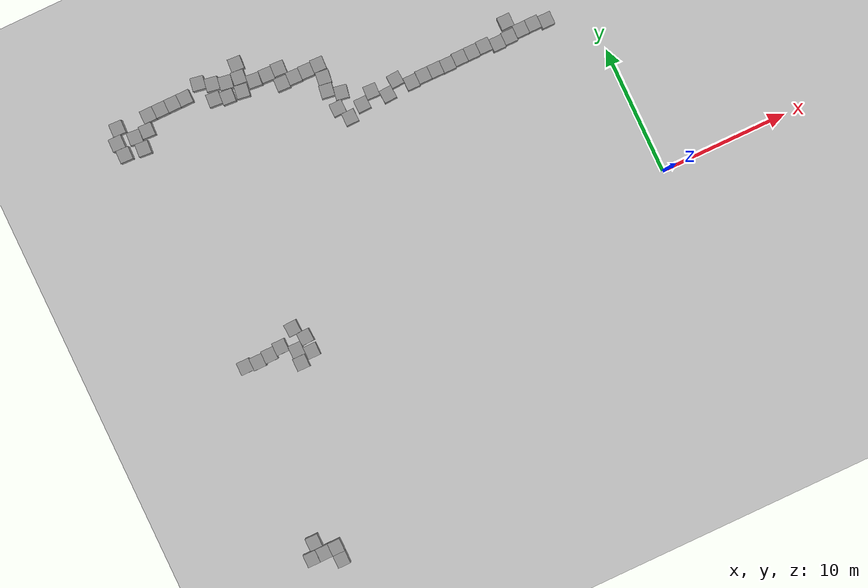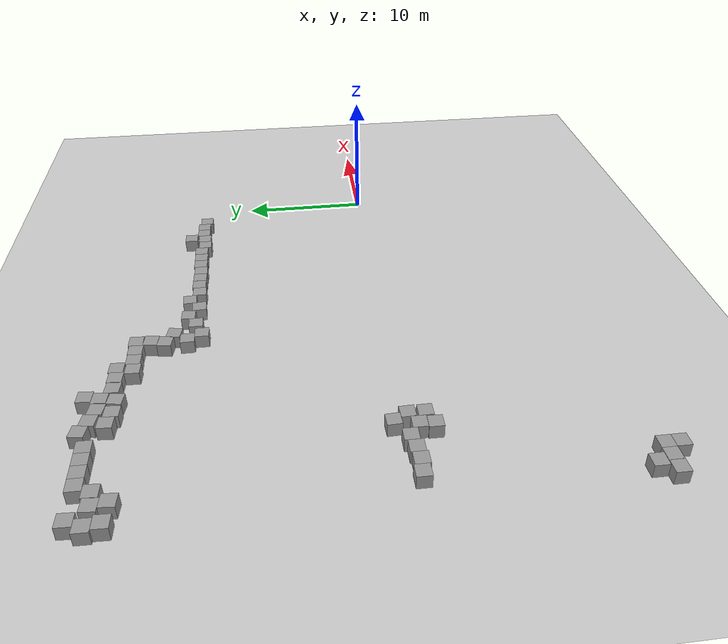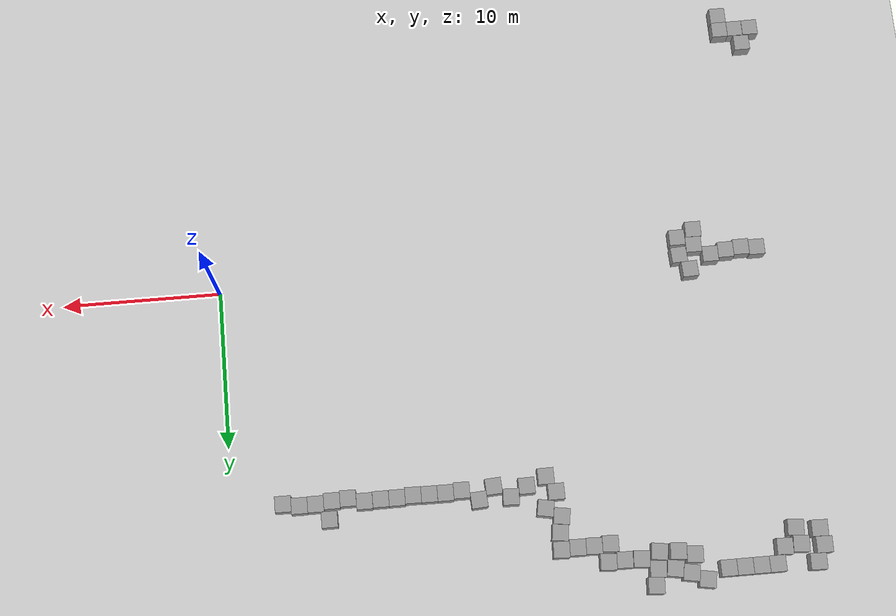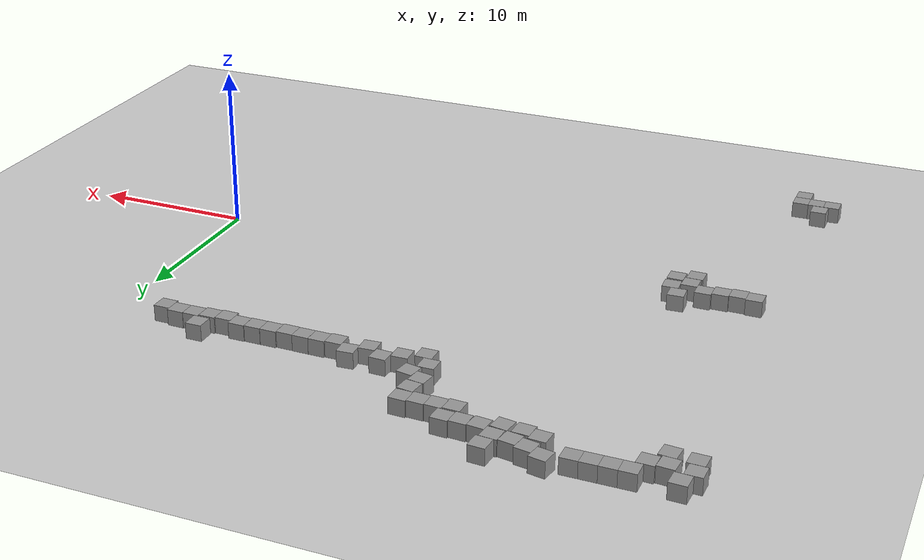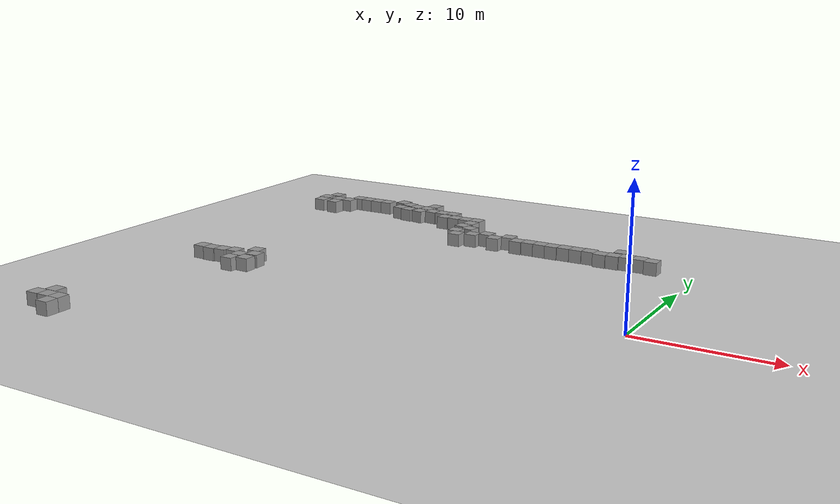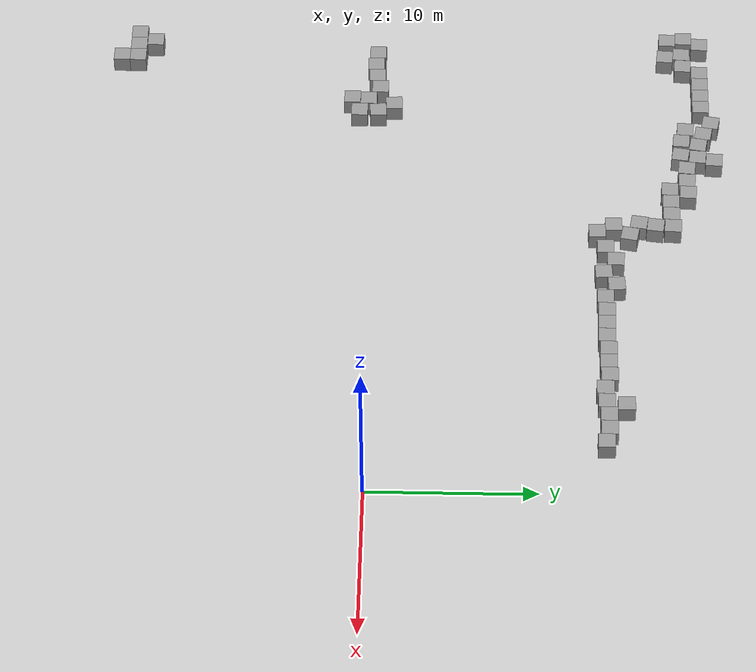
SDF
<sdf version="1.7">
 <world name="default">
  <model name="ground_plane">
   <static>1</static>
   <link name="link">
    <collision name="collision">
     <geometry><plane><normal>0 0 1</normal><size>100 100</size></plane></geometry>
     <surface>
      <contact><collide_bitmask>65535</collide_bitmask></contact>
      <friction><ode><mu>100</mu><mu2>50</mu2></ode></friction>
     </surface>
    </collision>
    <visual name="visual">
     <cast_shadows>0</cast_shadows>
     <geometry><plane><normal>0 0 1</normal><size>100 100</size></plane></geometry>
     <material>
      <script><uri>file://media/materials/scripts/gazebo.material</uri><name>Gazebo/Grey</name></script>
     </material>
    </visual>
   </link>
  </model>
  <model name="unit_box_clone_11">
   <pose>-3.20904 13.8326 0.499995 0 -1e-05 -0.006582</pose>
   <link name="link">
    <inertial>
     <mass>1</mass>
     <inertia>
      <ixx>0.166667</ixx>
      <ixy>0</ixy>
      <ixz>0</ixz>
      <iyy>0.166667</iyy>
      <iyz>0</iyz>
      <izz>0.166667</izz>
     </inertia>
    </inertial>
    <collision name="collision"><geometry><box><size>1 1 1</size></box></geometry></collision>
    <visual name="visual">
     <geometry><box><size>1 1 1</size></box></geometry>
     <material>
      <script><name>Gazebo/Grey</name><uri>file://media/materials/scripts/gazebo.material</uri></script>
     </material>
    </visual>
   </link>
  </model>
  <model name="unit_box_clone_12">
   <pose>-4.20812 14.0134 0.499995 0 -1e-05 -0.007246</pose>
   <link name="link">
    <inertial>
     <mass>1</mass>
     <inertia>
      <ixx>0.166667</ixx>
      <ixy>0</ixy>
      <ixz>0</ixz>
      <iyy>0.166667</iyy>
      <iyz>0</iyz>
      <izz>0.166667</izz>
     </inertia>
    </inertial>
    <collision name="collision"><geometry><box><size>1 1 1</size></box></geometry></collision>
    <visual name="visual">
     <geometry><box><size>1 1 1</size></box></geometry>
     <material>
      <script><name>Gazebo/Grey</name><uri>file://media/materials/scripts/gazebo.material</uri></script>
     </material>
    </visual>
   </link>
  </model>
  <model name="unit_box_clone_13">
   <pose>-5.20876 14.0027 0.5 -0 -0 -0.007598</pose>
   <link name="link">
    <inertial>
     <mass>1</mass>
     <inertia>
      <ixx>0.166667</ixx>
      <ixy>0</ixy>
      <ixz>0</ixz>
      <iyy>0.166667</iyy>
      <iyz>0</iyz>
      <izz>0.166667</izz>
     </inertia>
    </inertial>
    <collision name="collision"><geometry><box><size>1 1 1</size></box></geometry></collision>
    <visual name="visual">
     <geometry><box><size>1 1 1</size></box></geometry>
     <material>
      <script><name>Gazebo/Grey</name><uri>file://media/materials/scripts/gazebo.material</uri></script>
     </material>
    </visual>
   </link>
  </model>
  <model name="unit_box_clone_14">
   <pose>-6.21043 13.8841 0.499995 -1e-05 -0 -0.007559</pose>
   <link name="link">
    <inertial>
     <mass>1</mass>
     <inertia>
      <ixx>0.166667</ixx>
      <ixy>0</ixy>
      <ixz>0</ixz>
      <iyy>0.166667</iyy>
      <iyz>0</iyz>
      <izz>0.166667</izz>
     </inertia>
    </inertial>
    <collision name="collision"><geometry><box><size>1 1 1</size></box></geometry></collision>
    <visual name="visual">
     <geometry><box><size>1 1 1</size></box></geometry>
     <material>
      <script><name>Gazebo/Grey</name><uri>file://media/materials/scripts/gazebo.material</uri></script>
     </material>
    </visual>
   </link>
  </model>
  <model name="unit_box_clone_15">
   <pose>-6.0009 15.0113 0.5 -0 -0 -0.002611</pose>
   <link name="link">
    <inertial>
     <mass>1</mass>
     <inertia>
      <ixx>0.166667</ixx>
      <ixy>0</ixy>
      <ixz>0</ixz>
      <iyy>0.166667</iyy>
      <iyz>0</iyz>
      <izz>0.166667</izz>
     </inertia>
    </inertial>
    <collision name="collision"><geometry><box><size>1 1 1</size></box></geometry></collision>
    <visual name="visual">
     <geometry><box><size>1 1 1</size></box></geometry>
     <material>
      <script><name>Gazebo/Grey</name><uri>file://media/materials/scripts/gazebo.material</uri></script>
     </material>
    </visual>
   </link>
  </model>
  <model name="unit_box_clone_16">
   <pose>-8.21249 14.0705 0.5 0 -0 -0.008651</pose>
   <link name="link">
    <inertial>
     <mass>1</mass>
     <inertia>
      <ixx>0.166667</ixx>
      <ixy>0</ixy>
      <ixz>0</ixz>
      <iyy>0.166667</iyy>
      <iyz>0</iyz>
      <izz>0.166667</izz>
     </inertia>
    </inertial>
    <collision name="collision"><geometry><box><size>1 1 1</size></box></geometry></collision>
    <visual name="visual">
     <geometry><box><size>1 1 1</size></box></geometry>
     <material>
      <script><name>Gazebo/Grey</name><uri>file://media/materials/scripts/gazebo.material</uri></script>
     </material>
    </visual>
   </link>
  </model>
  <model name="unit_box_clone_17">
   <pose>-7.21146 13.8128 0.499995 0 -1e-05 -0.00754</pose>
   <link name="link">
    <inertial>
     <mass>1</mass>
     <inertia>
      <ixx>0.166667</ixx>
      <ixy>0</ixy>
      <ixz>0</ixz>
      <iyy>0.166667</iyy>
      <iyz>0</iyz>
      <izz>0.166667</izz>
     </inertia>
    </inertial>
    <collision name="collision"><geometry><box><size>1 1 1</size></box></geometry></collision>
    <visual name="visual">
     <geometry><box><size>1 1 1</size></box></geometry>
     <material>
      <script><name>Gazebo/Grey</name><uri>file://media/materials/scripts/gazebo.material</uri></script>
     </material>
    </visual>
   </link>
  </model>
  <model name="unit_box_clone_18">
   <pose>-9.21544 14.0347 0.499995 0 -1e-05 -0.008374</pose>
   <link name="link">
    <inertial>
     <mass>1</mass>
     <inertia>
      <ixx>0.166667</ixx>
      <ixy>0</ixy>
      <ixz>0</ixz>
      <iyy>0.166667</iyy>
      <iyz>0</iyz>
      <izz>0.166667</izz>
     </inertia>
    </inertial>
    <collision name="collision"><geometry><box><size>1 1 1</size></box></geometry></collision>
    <visual name="visual">
     <geometry><box><size>1 1 1</size></box></geometry>
     <material>
      <script><name>Gazebo/Grey</name><uri>file://media/materials/scripts/gazebo.material</uri></script>
     </material>
    </visual>
   </link>
  </model>
  <model name="unit_box_clone_19">
   <pose>-10.2155 14.0343 0.499995 0 9e-06 -0.008419</pose>
   <link name="link">
    <inertial>
     <mass>1</mass>
     <inertia>
      <ixx>0.166667</ixx>
      <ixy>0</ixy>
      <ixz>0</ixz>
      <iyy>0.166667</iyy>
      <iyz>0</iyz>
      <izz>0.166667</izz>
     </inertia>
    </inertial>
    <collision name="collision"><geometry><box><size>1 1 1</size></box></geometry></collision>
    <visual name="visual">
     <geometry><box><size>1 1 1</size></box></geometry>
     <material>
      <script><name>Gazebo/Grey</name><uri>file://media/materials/scripts/gazebo.material</uri></script>
     </material>
    </visual>
   </link>
  </model>
  <model name="unit_box_clone_20">
   <pose>-11.2168 13.9621 0.499995 0 -1e-05 -0.009646</pose>
   <link name="link">
    <inertial>
     <mass>1</mass>
     <inertia>
      <ixx>0.166667</ixx>
      <ixy>0</ixy>
      <ixz>0</ixz>
      <iyy>0.166667</iyy>
      <iyz>0</iyz>
      <izz>0.166667</izz>
     </inertia>
    </inertial>
    <collision name="collision"><geometry><box><size>1 1 1</size></box></geometry></collision>
    <visual name="visual">
     <geometry><box><size>1 1 1</size></box></geometry>
     <material>
      <script><name>Gazebo/Grey</name><uri>file://media/materials/scripts/gazebo.material</uri></script>
     </material>
    </visual>
   </link>
  </model>
  <model name="unit_box_clone_21">
   <pose>-13.2188 13.9931 0.499995 1e-05 -0 -0.010031</pose>
   <link name="link">
    <inertial>
     <mass>1</mass>
     <inertia>
      <ixx>0.166667</ixx>
      <ixy>0</ixy>
      <ixz>0</ixz>
      <iyy>0.166667</iyy>
      <iyz>0</iyz>
      <izz>0.166667</izz>
     </inertia>
    </inertial>
    <collision name="collision"><geometry><box><size>1 1 1</size></box></geometry></collision>
    <visual name="visual">
     <geometry><box><size>1 1 1</size></box></geometry>
     <material>
      <script><name>Gazebo/Grey</name><uri>file://media/materials/scripts/gazebo.material</uri></script>
     </material>
    </visual>
   </link>
  </model>
  <model name="unit_box_clone_22">
   <pose>-12.2173 13.985 0.5 0 0 -0.009679</pose>
   <link name="link">
    <inertial>
     <mass>1</mass>
     <inertia>
      <ixx>0.166667</ixx>
      <ixy>0</ixy>
      <ixz>0</ixz>
      <iyy>0.166667</iyy>
      <iyz>0</iyz>
      <izz>0.166667</izz>
     </inertia>
    </inertial>
    <collision name="collision"><geometry><box><size>1 1 1</size></box></geometry></collision>
    <visual name="visual">
     <geometry><box><size>1 1 1</size></box></geometry>
     <material>
      <script><name>Gazebo/Grey</name><uri>file://media/materials/scripts/gazebo.material</uri></script>
     </material>
    </visual>
   </link>
  </model>
  <model name="unit_box_clone_23">
   <pose>-14.2197 13.9179 0.5 0 -0 -0.010055</pose>
   <link name="link">
    <inertial>
     <mass>1</mass>
     <inertia>
      <ixx>0.166667</ixx>
      <ixy>0</ixy>
      <ixz>0</ixz>
      <iyy>0.166667</iyy>
      <iyz>0</iyz>
      <izz>0.166667</izz>
     </inertia>
    </inertial>
    <collision name="collision"><geometry><box><size>1 1 1</size></box></geometry></collision>
    <visual name="visual">
     <geometry><box><size>1 1 1</size></box></geometry>
     <material>
      <script><name>Gazebo/Grey</name><uri>file://media/materials/scripts/gazebo.material</uri></script>
     </material>
    </visual>
   </link>
  </model>
  <model name="unit_box_clone_181">
   <pose>-33.9994 -14.9998 0.5 0 0 -0.00045</pose>
   <link name="link">
    <inertial>
     <mass>1</mass>
     <inertia>
      <ixx>0.166667</ixx>
      <ixy>0</ixy>
      <ixz>0</ixz>
      <iyy>0.166667</iyy>
      <iyz>0</iyz>
      <izz>0.166667</izz>
     </inertia>
    </inertial>
    <collision name="collision"><geometry><box><size>1 1 1</size></box></geometry></collision>
    <visual name="visual">
     <geometry><box><size>1 1 1</size></box></geometry>
     <material>
      <script><name>Gazebo/Grey</name><uri>file://media/materials/scripts/gazebo.material</uri></script>
     </material>
    </visual>
   </link>
  </model>
  <model name="unit_box_clone_182">
   <pose>-34.0003 -16.0001 0.499995 0 -1e-05 0.000119</pose>
   <link name="link">
    <inertial>
     <mass>1</mass>
     <inertia>
      <ixx>0.166667</ixx>
      <ixy>0</ixy>
      <ixz>0</ixz>
      <iyy>0.166667</iyy>
      <iyz>0</iyz>
      <izz>0.166667</izz>
     </inertia>
    </inertial>
    <collision name="collision"><geometry><box><size>1 1 1</size></box></geometry></collision>
    <visual name="visual">
     <geometry><box><size>1 1 1</size></box></geometry>
     <material>
      <script><name>Gazebo/Grey</name><uri>file://media/materials/scripts/gazebo.material</uri></script>
     </material>
    </visual>
   </link>
  </model>
  <model name="unit_box_clone_183">
   <pose>-36.0048 -15.0122 0.5 0 0 -0.001812</pose>
   <link name="link">
    <inertial>
     <mass>1</mass>
     <inertia>
      <ixx>0.166667</ixx>
      <ixy>0</ixy>
      <ixz>0</ixz>
      <iyy>0.166667</iyy>
      <iyz>0</iyz>
      <izz>0.166667</izz>
     </inertia>
    </inertial>
    <collision name="collision"><geometry><box><size>1 1 1</size></box></geometry></collision>
    <visual name="visual">
     <geometry><box><size>1 1 1</size></box></geometry>
     <material>
      <script><name>Gazebo/Grey</name><uri>file://media/materials/scripts/gazebo.material</uri></script>
     </material>
    </visual>
   </link>
  </model>
  <model name="unit_box_clone_184">
   <pose>-34.9994 -14.9997 0.5 0 -0 -0.000424</pose>
   <link name="link">
    <inertial>
     <mass>1</mass>
     <inertia>
      <ixx>0.166667</ixx>
      <ixy>0</ixy>
      <ixz>0</ixz>
      <iyy>0.166667</iyy>
      <iyz>0</iyz>
      <izz>0.166667</izz>
     </inertia>
    </inertial>
    <collision name="collision"><geometry><box><size>1 1 1</size></box></geometry></collision>
    <visual name="visual">
     <geometry><box><size>1 1 1</size></box></geometry>
     <material>
      <script><name>Gazebo/Grey</name><uri>file://media/materials/scripts/gazebo.material</uri></script>
     </material>
    </visual>
   </link>
  </model>
  <model name="unit_box_clone_185">
   <pose>-35.3556 -13.977 0.5 0 -0 -0.002166</pose>
   <link name="link">
    <inertial>
     <mass>1</mass>
     <inertia>
      <ixx>0.166667</ixx>
      <ixy>0</ixy>
      <ixz>0</ixz>
      <iyy>0.166667</iyy>
      <iyz>0</iyz>
      <izz>0.166667</izz>
     </inertia>
    </inertial>
    <collision name="collision"><geometry><box><size>1 1 1</size></box></geometry></collision>
    <visual name="visual">
     <geometry><box><size>1 1 1</size></box></geometry>
     <material>
      <script><name>Gazebo/Grey</name><uri>file://media/materials/scripts/gazebo.material</uri></script>
     </material>
    </visual>
   </link>
  </model>
  <model name="unit_box_clone_207">
   <pose>-15.2477 14.5937 0.5 0 -0 0.059627</pose>
   <link name="link">
    <inertial>
     <mass>1</mass>
     <inertia>
      <ixx>0.166667</ixx>
      <ixy>0</ixy>
      <ixz>0</ixz>
      <iyy>0.166667</iyy>
      <iyz>0</iyz>
      <izz>0.166667</izz>
     </inertia>
    </inertial>
    <collision name="collision"><geometry><box><size>1 1 1</size></box></geometry></collision>
    <visual name="visual">
     <geometry><box><size>1 1 1</size></box></geometry>
     <material>
      <script><name>Gazebo/Grey</name><uri>file://media/materials/scripts/gazebo.material</uri></script>
     </material>
    </visual>
   </link>
  </model>
  <model name="unit_box_clone_208">
   <pose>-16.2053 13.8381 0.5 0 -0 0.057706</pose>
   <link name="link">
    <inertial>
     <mass>1</mass>
     <inertia>
      <ixx>0.166667</ixx>
      <ixy>0</ixy>
      <ixz>0</ixz>
      <iyy>0.166667</iyy>
      <iyz>0</iyz>
      <izz>0.166667</izz>
     </inertia>
    </inertial>
    <collision name="collision"><geometry><box><size>1 1 1</size></box></geometry></collision>
    <visual name="visual">
     <geometry><box><size>1 1 1</size></box></geometry>
     <material>
      <script><name>Gazebo/Grey</name><uri>file://media/materials/scripts/gazebo.material</uri></script>
     </material>
    </visual>
   </link>
  </model>
  <model name="unit_box_clone_209">
   <pose>-17.2236 14.5773 0.499995 0 1e-05 -0.037891</pose>
   <link name="link">
    <inertial>
     <mass>1</mass>
     <inertia>
      <ixx>0.166667</ixx>
      <ixy>0</ixy>
      <ixz>0</ixz>
      <iyy>0.166667</iyy>
      <iyz>0</iyz>
      <izz>0.166667</izz>
     </inertia>
    </inertial>
    <collision name="collision"><geometry><box><size>1 1 1</size></box></geometry></collision>
    <visual name="visual">
     <geometry><box><size>1 1 1</size></box></geometry>
     <material>
      <script><name>Gazebo/Grey</name><uri>file://media/materials/scripts/gazebo.material</uri></script>
     </material>
    </visual>
   </link>
  </model>
  <model name="unit_box_clone_210">
   <pose>-18.2408 13.9791 0.499995 1e-05 -0 0.01507</pose>
   <link name="link">
    <inertial>
     <mass>1</mass>
     <inertia>
      <ixx>0.166667</ixx>
      <ixy>0</ixy>
      <ixz>0</ixz>
      <iyy>0.166667</iyy>
      <iyz>0</iyz>
      <izz>0.166667</izz>
     </inertia>
    </inertial>
    <collision name="collision"><geometry><box><size>1 1 1</size></box></geometry></collision>
    <visual name="visual">
     <geometry><box><size>1 1 1</size></box></geometry>
     <material>
      <script><name>Gazebo/Grey</name><uri>file://media/materials/scripts/gazebo.material</uri></script>
     </material>
    </visual>
   </link>
  </model>
  <model name="unit_box_clone_211">
   <pose>-19.4721 13.4891 0.5 0 -0 0.007456</pose>
   <link name="link">
    <inertial>
     <mass>1</mass>
     <inertia>
      <ixx>0.166667</ixx>
      <ixy>0</ixy>
      <ixz>0</ixz>
      <iyy>0.166667</iyy>
      <iyz>0</iyz>
      <izz>0.166667</izz>
     </inertia>
    </inertial>
    <collision name="collision"><geometry><box><size>1 1 1</size></box></geometry></collision>
    <visual name="visual">
     <geometry><box><size>1 1 1</size></box></geometry>
     <material>
      <script><name>Gazebo/Grey</name><uri>file://media/materials/scripts/gazebo.material</uri></script>
     </material>
    </visual>
   </link>
  </model>
  <model name="unit_box_clone_212">
   <pose>-19.275 15.4516 0.5 0 -0 -0.18269</pose>
   <link name="link">
    <inertial>
     <mass>1</mass>
     <inertia>
      <ixx>0.166667</ixx>
      <ixy>0</ixy>
      <ixz>0</ixz>
      <iyy>0.166667</iyy>
      <iyz>0</iyz>
      <izz>0.166667</izz>
     </inertia>
    </inertial>
    <collision name="collision"><geometry><box><size>1 1 1</size></box></geometry></collision>
    <visual name="visual">
     <geometry><box><size>1 1 1</size></box></geometry>
     <material>
      <script><name>Gazebo/Grey</name><uri>file://media/materials/scripts/gazebo.material</uri></script>
     </material>
    </visual>
   </link>
  </model>
  <model name="unit_box_clone_213">
   <pose>-20.0187 14.4856 0.5 0 -0 0.006373</pose>
   <link name="link">
    <inertial>
     <mass>1</mass>
     <inertia>
      <ixx>0.166667</ixx>
      <ixy>0</ixy>
      <ixz>0</ixz>
      <iyy>0.166667</iyy>
      <iyz>0</iyz>
      <izz>0.166667</izz>
     </inertia>
    </inertial>
    <collision name="collision"><geometry><box><size>1 1 1</size></box></geometry></collision>
    <visual name="visual">
     <geometry><box><size>1 1 1</size></box></geometry>
     <material>
      <script><name>Gazebo/Grey</name><uri>file://media/materials/scripts/gazebo.material</uri></script>
     </material>
    </visual>
   </link>
  </model>
  <model name="unit_box_clone_214">
   <pose>-20.0078 17.0097 0.5 0 0 -0.124283</pose>
   <link name="link">
    <inertial>
     <mass>1</mass>
     <inertia>
      <ixx>0.166667</ixx>
      <ixy>0</ixy>
      <ixz>0</ixz>
      <iyy>0.166667</iyy>
      <iyz>0</iyz>
      <izz>0.166667</izz>
     </inertia>
    </inertial>
    <collision name="collision"><geometry><box><size>1 1 1</size></box></geometry></collision>
    <visual name="visual">
     <geometry><box><size>1 1 1</size></box></geometry>
     <material>
      <script><name>Gazebo/Grey</name><uri>file://media/materials/scripts/gazebo.material</uri></script>
     </material>
    </visual>
   </link>
  </model>
  <model name="unit_box_clone_215">
   <pose>-20.2038 16.0147 0.499995 -0 1e-05 -0.150919</pose>
   <link name="link">
    <inertial>
     <mass>1</mass>
     <inertia>
      <ixx>0.166667</ixx>
      <ixy>0</ixy>
      <ixz>0</ixz>
      <iyy>0.166667</iyy>
      <iyz>0</iyz>
      <izz>0.166667</izz>
     </inertia>
    </inertial>
    <collision name="collision"><geometry><box><size>1 1 1</size></box></geometry></collision>
    <visual name="visual">
     <geometry><box><size>1 1 1</size></box></geometry>
     <material>
      <script><name>Gazebo/Grey</name><uri>file://media/materials/scripts/gazebo.material</uri></script>
     </material>
    </visual>
   </link>
  </model>
  <model name="unit_box_clone_216">
   <pose>-19.9718 18.049 0.5 0 0 -0.041018</pose>
   <link name="link">
    <inertial>
     <mass>1</mass>
     <inertia>
      <ixx>0.166667</ixx>
      <ixy>0</ixy>
      <ixz>0</ixz>
      <iyy>0.166667</iyy>
      <iyz>0</iyz>
      <izz>0.166667</izz>
     </inertia>
    </inertial>
    <collision name="collision"><geometry><box><size>1 1 1</size></box></geometry></collision>
    <visual name="visual">
     <geometry><box><size>1 1 1</size></box></geometry>
     <material>
      <script><name>Gazebo/Grey</name><uri>file://media/materials/scripts/gazebo.material</uri></script>
     </material>
    </visual>
   </link>
  </model>
  <model name="unit_box_clone_217">
   <pose>-21.9767 17.9887 0.5 0 0 -0.039168</pose>
   <link name="link">
    <inertial>
     <mass>1</mass>
     <inertia>
      <ixx>0.166667</ixx>
      <ixy>0</ixy>
      <ixz>0</ixz>
      <iyy>0.166667</iyy>
      <iyz>0</iyz>
      <izz>0.166667</izz>
     </inertia>
    </inertial>
    <collision name="collision"><geometry><box><size>1 1 1</size></box></geometry></collision>
    <visual name="visual">
     <geometry><box><size>1 1 1</size></box></geometry>
     <material>
      <script><name>Gazebo/Grey</name><uri>file://media/materials/scripts/gazebo.material</uri></script>
     </material>
    </visual>
   </link>
  </model>
  <model name="unit_box_clone_218">
   <pose>-20.9756 17.9943 0.5 0 0 -0.039183</pose>
   <link name="link">
    <inertial>
     <mass>1</mass>
     <inertia>
      <ixx>0.166667</ixx>
      <ixy>0</ixy>
      <ixz>0</ixz>
      <iyy>0.166667</iyy>
      <iyz>0</iyz>
      <izz>0.166667</izz>
     </inertia>
    </inertial>
    <collision name="collision"><geometry><box><size>1 1 1</size></box></geometry></collision>
    <visual name="visual">
     <geometry><box><size>1 1 1</size></box></geometry>
     <material>
      <script><name>Gazebo/Grey</name><uri>file://media/materials/scripts/gazebo.material</uri></script>
     </material>
    </visual>
   </link>
  </model>
  <model name="unit_box_clone_219">
   <pose>-22.9808 17.931 0.5 -0 -0 -0.040587</pose>
   <link name="link">
    <inertial>
     <mass>1</mass>
     <inertia>
      <ixx>0.166667</ixx>
      <ixy>0</ixy>
      <ixz>0</ixz>
      <iyy>0.166667</iyy>
      <iyz>0</iyz>
      <izz>0.166667</izz>
     </inertia>
    </inertial>
    <collision name="collision"><geometry><box><size>1 1 1</size></box></geometry></collision>
    <visual name="visual">
     <geometry><box><size>1 1 1</size></box></geometry>
     <material>
      <script><name>Gazebo/Grey</name><uri>file://media/materials/scripts/gazebo.material</uri></script>
     </material>
    </visual>
   </link>
  </model>
  <model name="unit_box_clone_220">
   <pose>-22.7495 19.0269 0.5 -0 -0 -0.053568</pose>
   <link name="link">
    <inertial>
     <mass>1</mass>
     <inertia>
      <ixx>0.166667</ixx>
      <ixy>0</ixy>
      <ixz>0</ixz>
      <iyy>0.166667</iyy>
      <iyz>0</iyz>
      <izz>0.166667</izz>
     </inertia>
    </inertial>
    <collision name="collision"><geometry><box><size>1 1 1</size></box></geometry></collision>
    <visual name="visual">
     <geometry><box><size>1 1 1</size></box></geometry>
     <material>
      <script><name>Gazebo/Grey</name><uri>file://media/materials/scripts/gazebo.material</uri></script>
     </material>
    </visual>
   </link>
  </model>
  <model name="unit_box_clone_221">
   <pose>-24.7818 19.0106 0.5 -0 -0 -0.098009</pose>
   <link name="link">
    <inertial>
     <mass>1</mass>
     <inertia>
      <ixx>0.166667</ixx>
      <ixy>0</ixy>
      <ixz>0</ixz>
      <iyy>0.166667</iyy>
      <iyz>0</iyz>
      <izz>0.166667</izz>
     </inertia>
    </inertial>
    <collision name="collision"><geometry><box><size>1 1 1</size></box></geometry></collision>
    <visual name="visual">
     <geometry><box><size>1 1 1</size></box></geometry>
     <material>
      <script><name>Gazebo/Grey</name><uri>file://media/materials/scripts/gazebo.material</uri></script>
     </material>
    </visual>
   </link>
  </model>
  <model name="unit_box_clone_222">
   <pose>-25.7215 19.6931 0.499995 0 -1e-05 -0.094053</pose>
   <link name="link">
    <inertial>
     <mass>1</mass>
     <inertia>
      <ixx>0.166667</ixx>
      <ixy>0</ixy>
      <ixz>0</ixz>
      <iyy>0.166667</iyy>
      <iyz>0</iyz>
      <izz>0.166667</izz>
     </inertia>
    </inertial>
    <collision name="collision"><geometry><box><size>1 1 1</size></box></geometry></collision>
    <visual name="visual">
     <geometry><box><size>1 1 1</size></box></geometry>
     <material>
      <script><name>Gazebo/Grey</name><uri>file://media/materials/scripts/gazebo.material</uri></script>
     </material>
    </visual>
   </link>
  </model>
  <model name="unit_box_clone_223">
   <pose>-25.9133 18.6645 0.499996 9e-06 -0 -0.148994</pose>
   <link name="link">
    <inertial>
     <mass>1</mass>
     <inertia>
      <ixx>0.166667</ixx>
      <ixy>0</ixy>
      <ixz>0</ixz>
      <iyy>0.166667</iyy>
      <iyz>0</iyz>
      <izz>0.166667</izz>
     </inertia>
    </inertial>
    <collision name="collision"><geometry><box><size>1 1 1</size></box></geometry></collision>
    <visual name="visual">
     <geometry><box><size>1 1 1</size></box></geometry>
     <material>
      <script><name>Gazebo/Grey</name><uri>file://media/materials/scripts/gazebo.material</uri></script>
     </material>
    </visual>
   </link>
  </model>
  <model name="unit_box_clone_224">
   <pose>-23.7532 18.9868 0.5 -0 -0 -0.053766</pose>
   <link name="link">
    <inertial>
     <mass>1</mass>
     <inertia>
      <ixx>0.166667</ixx>
      <ixy>0</ixy>
      <ixz>0</ixz>
      <iyy>0.166667</iyy>
      <iyz>0</iyz>
      <izz>0.166667</izz>
     </inertia>
    </inertial>
    <collision name="collision"><geometry><box><size>1 1 1</size></box></geometry></collision>
    <visual name="visual">
     <geometry><box><size>1 1 1</size></box></geometry>
     <material>
      <script><name>Gazebo/Grey</name><uri>file://media/materials/scripts/gazebo.material</uri></script>
     </material>
    </visual>
   </link>
  </model>
  <model name="unit_box_clone_225">
   <pose>-28.6482 20.5709 0.5 0 -0 -0.17265</pose>
   <link name="link">
    <inertial>
     <mass>1</mass>
     <inertia>
      <ixx>0.166667</ixx>
      <ixy>0</ixy>
      <ixz>0</ixz>
      <iyy>0.166667</iyy>
      <iyz>0</iyz>
      <izz>0.166667</izz>
     </inertia>
    </inertial>
    <collision name="collision"><geometry><box><size>1 1 1</size></box></geometry></collision>
    <visual name="visual">
     <geometry><box><size>1 1 1</size></box></geometry>
     <material>
      <script><name>Gazebo/Grey</name><uri>file://media/materials/scripts/gazebo.material</uri></script>
     </material>
    </visual>
   </link>
  </model>
  <model name="unit_box_clone_226">
   <pose>-26.754 19.7587 0.499999 -2e-06 -0 -0.163436</pose>
   <link name="link">
    <inertial>
     <mass>1</mass>
     <inertia>
      <ixx>0.166667</ixx>
      <ixy>0</ixy>
      <ixz>0</ixz>
      <iyy>0.166667</iyy>
      <iyz>0</iyz>
      <izz>0.166667</izz>
     </inertia>
    </inertial>
    <collision name="collision"><geometry><box><size>1 1 1</size></box></geometry></collision>
    <visual name="visual">
     <geometry><box><size>1 1 1</size></box></geometry>
     <material>
      <script><name>Gazebo/Grey</name><uri>file://media/materials/scripts/gazebo.material</uri></script>
     </material>
    </visual>
   </link>
  </model>
  <model name="unit_box_clone_227">
   <pose>-28.0491 19.0028 0.5 0 0 -0.07006</pose>
   <link name="link">
    <inertial>
     <mass>1</mass>
     <inertia>
      <ixx>0.166667</ixx>
      <ixy>0</ixy>
      <ixz>0</ixz>
      <iyy>0.166667</iyy>
      <iyz>0</iyz>
      <izz>0.166667</izz>
     </inertia>
    </inertial>
    <collision name="collision"><geometry><box><size>1 1 1</size></box></geometry></collision>
    <visual name="visual">
     <geometry><box><size>1 1 1</size></box></geometry>
     <material>
      <script><name>Gazebo/Grey</name><uri>file://media/materials/scripts/gazebo.material</uri></script>
     </material>
    </visual>
   </link>
  </model>
  <model name="unit_box_clone_228">
   <pose>-29.9998 19.9999 0.5 -0 -0 -0.000297</pose>
   <link name="link">
    <inertial>
     <mass>1</mass>
     <inertia>
      <ixx>0.166667</ixx>
      <ixy>0</ixy>
      <ixz>0</ixz>
      <iyy>0.166667</iyy>
      <iyz>0</iyz>
      <izz>0.166667</izz>
     </inertia>
    </inertial>
    <collision name="collision"><geometry><box><size>1 1 1</size></box></geometry></collision>
    <visual name="visual">
     <geometry><box><size>1 1 1</size></box></geometry>
     <material>
      <script><name>Gazebo/Grey</name><uri>file://media/materials/scripts/gazebo.material</uri></script>
     </material>
    </visual>
   </link>
  </model>
  <model name="unit_box_clone_229">
   <pose>-30.9998 20.0002 0.5 0 0 -0.00031</pose>
   <link name="link">
    <inertial>
     <mass>1</mass>
     <inertia>
      <ixx>0.166667</ixx>
      <ixy>0</ixy>
      <ixz>0</ixz>
      <iyy>0.166667</iyy>
      <iyz>0</iyz>
      <izz>0.166667</izz>
     </inertia>
    </inertial>
    <collision name="collision"><geometry><box><size>1 1 1</size></box></geometry></collision>
    <visual name="visual">
     <geometry><box><size>1 1 1</size></box></geometry>
     <material>
      <script><name>Gazebo/Grey</name><uri>file://media/materials/scripts/gazebo.material</uri></script>
     </material>
    </visual>
   </link>
  </model>
  <model name="unit_box_clone_230">
   <pose>-31.9999 20.0004 0.499995 1e-05 -0 -0.000437</pose>
   <link name="link">
    <inertial>
     <mass>1</mass>
     <inertia>
      <ixx>0.166667</ixx>
      <ixy>0</ixy>
      <ixz>0</ixz>
      <iyy>0.166667</iyy>
      <iyz>0</iyz>
      <izz>0.166667</izz>
     </inertia>
    </inertial>
    <collision name="collision"><geometry><box><size>1 1 1</size></box></geometry></collision>
    <visual name="visual">
     <geometry><box><size>1 1 1</size></box></geometry>
     <material>
      <script><name>Gazebo/Grey</name><uri>file://media/materials/scripts/gazebo.material</uri></script>
     </material>
    </visual>
   </link>
  </model>
  <model name="unit_box_clone_231">
   <pose>-33.5693 18.9968 0.499995 0 -1e-05 -0.038554</pose>
   <link name="link">
    <inertial>
     <mass>1</mass>
     <inertia>
      <ixx>0.166667</ixx>
      <ixy>0</ixy>
      <ixz>0</ixz>
      <iyy>0.166667</iyy>
      <iyz>0</iyz>
      <izz>0.166667</izz>
     </inertia>
    </inertial>
    <collision name="collision"><geometry><box><size>1 1 1</size></box></geometry></collision>
    <visual name="visual">
     <geometry><box><size>1 1 1</size></box></geometry>
     <material>
      <script><name>Gazebo/Grey</name><uri>file://media/materials/scripts/gazebo.material</uri></script>
     </material>
    </visual>
   </link>
  </model>
  <model name="unit_box_clone_232">
   <pose>-34.3777 17.9085 0.499995 -1e-05 -0 -0.074522</pose>
   <link name="link">
    <inertial>
     <mass>1</mass>
     <inertia>
      <ixx>0.166667</ixx>
      <ixy>0</ixy>
      <ixz>0</ixz>
      <iyy>0.166667</iyy>
      <iyz>0</iyz>
      <izz>0.166667</izz>
     </inertia>
    </inertial>
    <collision name="collision"><geometry><box><size>1 1 1</size></box></geometry></collision>
    <visual name="visual">
     <geometry><box><size>1 1 1</size></box></geometry>
     <material>
      <script><name>Gazebo/Grey</name><uri>file://media/materials/scripts/gazebo.material</uri></script>
     </material>
    </visual>
   </link>
  </model>
  <model name="unit_box_clone_233">
   <pose>-35.492 20.0767 0.5 -0 -0 -0.037956</pose>
   <link name="link">
    <inertial>
     <mass>1</mass>
     <inertia>
      <ixx>0.166667</ixx>
      <ixy>0</ixy>
      <ixz>0</ixz>
      <iyy>0.166667</iyy>
      <iyz>0</iyz>
      <izz>0.166667</izz>
     </inertia>
    </inertial>
    <collision name="collision"><geometry><box><size>1 1 1</size></box></geometry></collision>
    <visual name="visual">
     <geometry><box><size>1 1 1</size></box></geometry>
     <material>
      <script><name>Gazebo/Grey</name><uri>file://media/materials/scripts/gazebo.material</uri></script>
     </material>
    </visual>
   </link>
  </model>
  <model name="unit_box_clone_238">
   <pose>-35.8371 18.0765 0.5 -0 -0 -0.030703</pose>
   <link name="link">
    <inertial>
     <mass>1</mass>
     <inertia>
      <ixx>0.166667</ixx>
      <ixy>0</ixy>
      <ixz>0</ixz>
      <iyy>0.166667</iyy>
      <iyz>0</iyz>
      <izz>0.166667</izz>
     </inertia>
    </inertial>
    <collision name="collision"><geometry><box><size>1 1 1</size></box></geometry></collision>
    <visual name="visual">
     <geometry><box><size>1 1 1</size></box></geometry>
     <material>
      <script><name>Gazebo/Grey</name><uri>file://media/materials/scripts/gazebo.material</uri></script>
     </material>
    </visual>
   </link>
  </model>
  <model name="unit_box_clone_239">
   <pose>-34.5899 18.9279 0.5 0 0 -0.073549</pose>
   <link name="link">
    <inertial>
     <mass>1</mass>
     <inertia>
      <ixx>0.166667</ixx>
      <ixy>0</ixy>
      <ixz>0</ixz>
      <iyy>0.166667</iyy>
      <iyz>0</iyz>
      <izz>0.166667</izz>
     </inertia>
    </inertial>
    <collision name="collision"><geometry><box><size>1 1 1</size></box></geometry></collision>
    <visual name="visual">
     <geometry><box><size>1 1 1</size></box></geometry>
     <material>
      <script><name>Gazebo/Grey</name><uri>file://media/materials/scripts/gazebo.material</uri></script>
     </material>
    </visual>
   </link>
  </model>
  <model name="unit_box_clone_240">
   <pose>-33 20.0009 0.499995 -0 1e-05 -0.000468</pose>
   <link name="link">
    <inertial>
     <mass>1</mass>
     <inertia>
      <ixx>0.166667</ixx>
      <ixy>0</ixy>
      <ixz>0</ixz>
      <iyy>0.166667</iyy>
      <iyz>0</iyz>
      <izz>0.166667</izz>
     </inertia>
    </inertial>
    <collision name="collision"><geometry><box><size>1 1 1</size></box></geometry></collision>
    <visual name="visual">
     <geometry><box><size>1 1 1</size></box></geometry>
     <material>
      <script><name>Gazebo/Grey</name><uri>file://media/materials/scripts/gazebo.material</uri></script>
     </material>
    </visual>
   </link>
  </model>
  <model name="unit_box_clone_277">
   <pose>-35.988 19.0855 0.499995 -1e-05 -0 -0.01973</pose>
   <link name="link">
    <inertial>
     <mass>1</mass>
     <inertia>
      <ixx>0.166667</ixx>
      <ixy>0</ixy>
      <ixz>0</ixz>
      <iyy>0.166667</iyy>
      <iyz>0</iyz>
      <izz>0.166667</izz>
     </inertia>
    </inertial>
    <collision name="collision"><geometry><box><size>1 1 1</size></box></geometry></collision>
    <visual name="visual">
     <geometry><box><size>1 1 1</size></box></geometry>
     <material>
      <script><name>Gazebo/Grey</name><uri>file://media/materials/scripts/gazebo.material</uri></script>
     </material>
    </visual>
   </link>
  </model>
  <model name="unit_box_clone_278">
   <pose>-27.7158 20.0846 0.5 0 0 -0.16846</pose>
   <link name="link">
    <inertial>
     <mass>1</mass>
     <inertia>
      <ixx>0.166667</ixx>
      <ixy>0</ixy>
      <ixz>0</ixz>
      <iyy>0.166667</iyy>
      <iyz>0</iyz>
      <izz>0.166667</izz>
     </inertia>
    </inertial>
    <collision name="collision"><geometry><box><size>1 1 1</size></box></geometry></collision>
    <visual name="visual">
     <geometry><box><size>1 1 1</size></box></geometry>
     <material>
      <script><name>Gazebo/Grey</name><uri>file://media/materials/scripts/gazebo.material</uri></script>
     </material>
    </visual>
   </link>
  </model>
  <model name="unit_box_clone_279">
   <pose>-27.0647 18.736 0.5 0 0 -0.071984</pose>
   <link name="link">
    <inertial>
     <mass>1</mass>
     <inertia>
      <ixx>0.166667</ixx>
      <ixy>0</ixy>
      <ixz>0</ixz>
      <iyy>0.166667</iyy>
      <iyz>0</iyz>
      <izz>0.166667</izz>
     </inertia>
    </inertial>
    <collision name="collision"><geometry><box><size>1 1 1</size></box></geometry></collision>
    <visual name="visual">
     <geometry><box><size>1 1 1</size></box></geometry>
     <material>
      <script><name>Gazebo/Grey</name><uri>file://media/materials/scripts/gazebo.material</uri></script>
     </material>
    </visual>
   </link>
  </model>
  <model name="unit_box_clone_280">
   <pose>-25.4839 20.6895 0.499995 0 1e-05 -0.06565</pose>
   <link name="link">
    <inertial>
     <mass>1</mass>
     <inertia>
      <ixx>0.166667</ixx>
      <ixy>0</ixy>
      <ixz>0</ixz>
      <iyy>0.166667</iyy>
      <iyz>0</iyz>
      <izz>0.166667</izz>
     </inertia>
    </inertial>
    <collision name="collision"><geometry><box><size>1 1 1</size></box></geometry></collision>
    <visual name="visual">
     <geometry><box><size>1 1 1</size></box></geometry>
     <material>
      <script><name>Gazebo/Grey</name><uri>file://media/materials/scripts/gazebo.material</uri></script>
     </material>
    </visual>
   </link>
  </model>
  <model name="unit_box_clone_294">
   <pose>-30.0112 1.1062 0.499995 -0 -1e-05 0.045229</pose>
   <link name="link">
    <inertial>
     <mass>1</mass>
     <inertia>
      <ixx>0.166667</ixx>
      <ixy>0</ixy>
      <ixz>0</ixz>
      <iyy>0.166667</iyy>
      <iyz>0</iyz>
      <izz>0.166667</izz>
     </inertia>
    </inertial>
    <collision name="collision"><geometry><box><size>1 1 1</size></box></geometry></collision>
    <visual name="visual">
     <geometry><box><size>1 1 1</size></box></geometry>
     <material>
      <script><name>Gazebo/Grey</name><uri>file://media/materials/scripts/gazebo.material</uri></script>
     </material>
    </visual>
   </link>
  </model>
  <model name="unit_box_clone_295">
   <pose>-29.4252 0.128726 0.499672 -2e-06 3e-06 0.048314</pose>
   <link name="link">
    <inertial>
     <mass>1</mass>
     <inertia>
      <ixx>0.166667</ixx>
      <ixy>0</ixy>
      <ixz>0</ixz>
      <iyy>0.166667</iyy>
      <iyz>0</iyz>
      <izz>0.166667</izz>
     </inertia>
    </inertial>
    <collision name="collision"><geometry><box><size>1 1 1</size></box></geometry></collision>
    <visual name="visual">
     <geometry><box><size>1 1 1</size></box></geometry>
     <material>
      <script><name>Gazebo/Grey</name><uri>file://media/materials/scripts/gazebo.material</uri></script>
     </material>
    </visual>
   </link>
  </model>
  <model name="unit_box_clone_296">
   <pose>-30.5133 -1.48134 0.499995 -1e-05 -0 -0.009737</pose>
   <link name="link">
    <inertial>
     <mass>1</mass>
     <inertia>
      <ixx>0.166667</ixx>
      <ixy>0</ixy>
      <ixz>0</ixz>
      <iyy>0.166667</iyy>
      <iyz>0</iyz>
      <izz>0.166667</izz>
     </inertia>
    </inertial>
    <collision name="collision"><geometry><box><size>1 1 1</size></box></geometry></collision>
    <visual name="visual">
     <geometry><box><size>1 1 1</size></box></geometry>
     <material>
      <script><name>Gazebo/Grey</name><uri>file://media/materials/scripts/gazebo.material</uri></script>
     </material>
    </visual>
   </link>
  </model>
  <model name="unit_box_clone_297">
   <pose>-29.4243 -1.01304 0.5 0 0 -0.000402</pose>
   <link name="link">
    <inertial>
     <mass>1</mass>
     <inertia>
      <ixx>0.166667</ixx>
      <ixy>0</ixy>
      <ixz>0</ixz>
      <iyy>0.166667</iyy>
      <iyz>0</iyz>
      <izz>0.166667</izz>
     </inertia>
    </inertial>
    <collision name="collision"><geometry><box><size>1 1 1</size></box></geometry></collision>
    <visual name="visual">
     <geometry><box><size>1 1 1</size></box></geometry>
     <material>
      <script><name>Gazebo/Grey</name><uri>file://media/materials/scripts/gazebo.material</uri></script>
     </material>
    </visual>
   </link>
  </model>
  <model name="unit_box_clone_298">
   <pose>-30.4244 -0.475057 0.499995 -0 1e-05 -0.007816</pose>
   <link name="link">
    <inertial>
     <mass>1</mass>
     <inertia>
      <ixx>0.166667</ixx>
      <ixy>0</ixy>
      <ixz>0</ixz>
      <iyy>0.166667</iyy>
      <iyz>0</iyz>
      <izz>0.166667</izz>
     </inertia>
    </inertial>
    <collision name="collision"><geometry><box><size>1 1 1</size></box></geometry></collision>
    <visual name="visual">
     <geometry><box><size>1 1 1</size></box></geometry>
     <material>
      <script><name>Gazebo/Grey</name><uri>file://media/materials/scripts/gazebo.material</uri></script>
     </material>
    </visual>
   </link>
  </model>
  <model name="unit_box_clone_299">
   <pose>-31.4215 0.228075 0.5 0 -0 -0.003204</pose>
   <link name="link">
    <inertial>
     <mass>1</mass>
     <inertia>
      <ixx>0.166667</ixx>
      <ixy>0</ixy>
      <ixz>0</ixz>
      <iyy>0.166667</iyy>
      <iyz>0</iyz>
      <izz>0.166667</izz>
     </inertia>
    </inertial>
    <collision name="collision"><geometry><box><size>1 1 1</size></box></geometry></collision>
    <visual name="visual">
     <geometry><box><size>1 1 1</size></box></geometry>
     <material>
      <script><name>Gazebo/Grey</name><uri>file://media/materials/scripts/gazebo.material</uri></script>
     </material>
    </visual>
   </link>
  </model>
  <model name="unit_box_clone_300">
   <pose>-32.4229 0.033389 0.5 -0 -0 -0.000783</pose>
   <link name="link">
    <inertial>
     <mass>1</mass>
     <inertia>
      <ixx>0.166667</ixx>
      <ixy>0</ixy>
      <ixz>0</ixz>
      <iyy>0.166667</iyy>
      <iyz>0</iyz>
      <izz>0.166667</izz>
     </inertia>
    </inertial>
    <collision name="collision"><geometry><box><size>1 1 1</size></box></geometry></collision>
    <visual name="visual">
     <geometry><box><size>1 1 1</size></box></geometry>
     <material>
      <script><name>Gazebo/Grey</name><uri>file://media/materials/scripts/gazebo.material</uri></script>
     </material>
    </visual>
   </link>
  </model>
  <model name="unit_box_clone_301">
   <pose>-34.423 0.020617 0.499995 -0 -1e-05 -0.000724</pose>
   <link name="link">
    <inertial>
     <mass>1</mass>
     <inertia>
      <ixx>0.166667</ixx>
      <ixy>0</ixy>
      <ixz>0</ixz>
      <iyy>0.166667</iyy>
      <iyz>0</iyz>
      <izz>0.166667</izz>
     </inertia>
    </inertial>
    <collision name="collision"><geometry><box><size>1 1 1</size></box></geometry></collision>
    <visual name="visual">
     <geometry><box><size>1 1 1</size></box></geometry>
     <material>
      <script><name>Gazebo/Grey</name><uri>file://media/materials/scripts/gazebo.material</uri></script>
     </material>
    </visual>
   </link>
  </model>
  <model name="unit_box_clone_302">
   <pose>-33.423 -0.066939 0.499956 1e-05 0 -0.000727</pose>
   <link name="link">
    <inertial>
     <mass>1</mass>
     <inertia>
      <ixx>0.166667</ixx>
      <ixy>0</ixy>
      <ixz>0</ixz>
      <iyy>0.166667</iyy>
      <iyz>0</iyz>
      <izz>0.166667</izz>
     </inertia>
    </inertial>
    <collision name="collision"><geometry><box><size>1 1 1</size></box></geometry></collision>
    <visual name="visual">
     <geometry><box><size>1 1 1</size></box></geometry>
     <material>
      <script><name>Gazebo/Grey</name><uri>file://media/materials/scripts/gazebo.material</uri></script>
     </material>
    </visual>
   </link>
  </model>
 </world>
</sdf>
